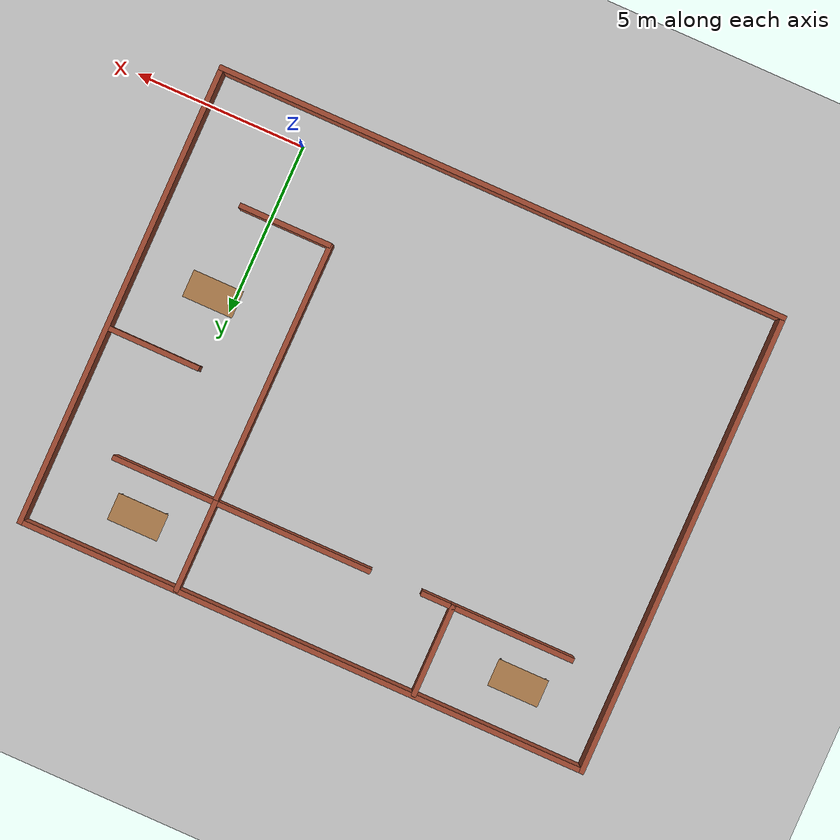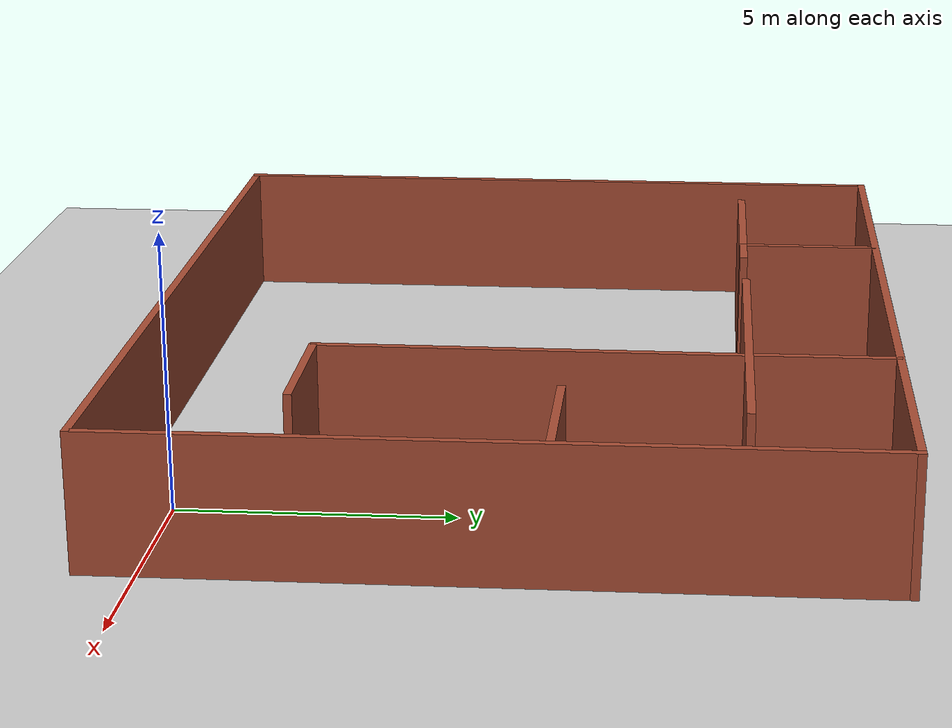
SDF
<sdf version="1.6">
 <world name="default">
  <light name="sun" type="directional">
   <pose>0 0 10 0 -0 0</pose>
   <diffuse>0.8 0.8 0.8 1</diffuse>
   <specular>0.2 0.2 0.2 1</specular>
   <attenuation>
    <range>1000</range>
    <constant>0.9</constant>
    <linear>0.01</linear>
    <quadratic>0.001</quadratic>
   </attenuation>
   <direction>-0.5 0.1 -0.9</direction>
  </light>
  <model name="ground_plane">
   <static>1</static>
   <link name="link">
    <collision name="collision">
     <geometry><plane><normal>0 0 1</normal><size>100 100</size></plane></geometry>
     <surface><friction><ode><mu>100</mu><mu2>50</mu2></ode></friction></surface>
    </collision>
    <visual name="visual">
     <cast_shadows>0</cast_shadows>
     <geometry><plane><normal>0 0 1</normal><size>100 100</size></plane></geometry>
     <material>
      <script><uri>file://media/materials/scripts/gazebo.material</uri><name>Gazebo/Grey</name></script>
     </material>
    </visual>
   </link>
  </model>
  <gravity>0 0 -9.8</gravity>
  <magnetic_field>6e-06 2.3e-05 -4.2e-05</magnetic_field>
  <atmosphere type="adiabatic"/>
  <physics name="default_physics" default="0" type="ode">
   <max_step_size>0.001</max_step_size>
   <real_time_factor>1</real_time_factor>
   <real_time_update_rate>1000</real_time_update_rate>
  </physics>
  <scene><ambient>0.4 0.4 0.4 1</ambient><background>0.7 0.7 0.7 1</background><shadows>1</shadows></scene>
  <audio><device>default</device></audio>
  <spherical_coordinates>
   <surface_model>EARTH_WGS84</surface_model>
   <latitude_deg>0</latitude_deg>
   <longitude_deg>0</longitude_deg>
   <elevation>0</elevation>
   <heading_deg>0</heading_deg>
  </spherical_coordinates>
  <model name="Warehouse">
   <link name="Wall_1">
    <pose>0.380508 -6.8 0 0 -0 0</pose>
    <visual name="Wall_1_Visual">
     <pose>0 0 1.25 0 -0 0</pose>
     <geometry><box><size>17 0.15 2.5</size></box></geometry>
     <material>
      <script><uri>file://media/materials/scripts/gazebo.material</uri><name>Gazebo/Bricks</name></script>
      <ambient>1 1 1 1</ambient>
     </material>
     <meta><layer>0</layer></meta>
    </visual>
    <collision name="Wall_1_Collision">
     <pose>0 0 1.25 0 -0 0</pose>
     <geometry><box><size>17 0.15 2.5</size></box></geometry>
     <surface>
      <friction>
       <ode><mu>1</mu><mu2>1</mu2><fdir1>0 0 0</fdir1><slip1>0</slip1><slip2>0</slip2></ode>
       <torsional>
        <coefficient>1</coefficient>
        <patch_radius>0</patch_radius>
        <surface_radius>0</surface_radius>
        <use_patch_radius>1</use_patch_radius>
        <ode><slip>0</slip></ode>
       </torsional>
      </friction>
      <bounce><restitution_coefficient>0</restitution_coefficient><threshold>1e+06</threshold></bounce>
      <contact>
       <collide_without_contact>0</collide_without_contact>
       <collide_without_contact_bitmask>1</collide_without_contact_bitmask>
       <collide_bitmask>1</collide_bitmask>
       <ode>
        <soft_cfm>0</soft_cfm>
        <soft_erp>0.2</soft_erp>
        <kp>1e+13</kp>
        <kd>1</kd>
        <max_vel>0.01</max_vel>
        <min_depth>0</min_depth>
       </ode>
       <bullet>
        <split_impulse>1</split_impulse>
        <split_impulse_penetration_threshold>-0.01</split_impulse_penetration_threshold>
        <soft_cfm>0</soft_cfm>
        <soft_erp>0.2</soft_erp>
        <kp>1e+13</kp>
        <kd>1</kd>
       </bullet>
      </contact>
     </surface>
    </collision>
   </link>
   <link name="Wall_2">
    <pose>8.80551 0 0 0 -0 1.5708</pose>
    <visual name="Wall_2_Visual">
     <pose>0 0 1.25 0 -0 0</pose>
     <geometry><box><size>13.75 0.15 2.5</size></box></geometry>
     <material>
      <script><uri>file://media/materials/scripts/gazebo.material</uri><name>Gazebo/Bricks</name></script>
      <ambient>1 1 1 1</ambient>
     </material>
     <meta><layer>0</layer></meta>
    </visual>
    <collision name="Wall_2_Collision">
     <pose>0 0 1.25 0 -0 0</pose>
     <geometry><box><size>13.75 0.15 2.5</size></box></geometry>
     <surface>
      <friction>
       <ode><mu>1</mu><mu2>1</mu2><fdir1>0 0 0</fdir1><slip1>0</slip1><slip2>0</slip2></ode>
       <torsional>
        <coefficient>1</coefficient>
        <patch_radius>0</patch_radius>
        <surface_radius>0</surface_radius>
        <use_patch_radius>1</use_patch_radius>
        <ode><slip>0</slip></ode>
       </torsional>
      </friction>
      <bounce><restitution_coefficient>0</restitution_coefficient><threshold>1e+06</threshold></bounce>
      <contact>
       <collide_without_contact>0</collide_without_contact>
       <collide_without_contact_bitmask>1</collide_without_contact_bitmask>
       <collide_bitmask>1</collide_bitmask>
       <ode>
        <soft_cfm>0</soft_cfm>
        <soft_erp>0.2</soft_erp>
        <kp>1e+13</kp>
        <kd>1</kd>
        <max_vel>0.01</max_vel>
        <min_depth>0</min_depth>
       </ode>
       <bullet>
        <split_impulse>1</split_impulse>
        <split_impulse_penetration_threshold>-0.01</split_impulse_penetration_threshold>
        <soft_cfm>0</soft_cfm>
        <soft_erp>0.2</soft_erp>
        <kp>1e+13</kp>
        <kd>1</kd>
       </bullet>
      </contact>
     </surface>
    </collision>
   </link>
   <link name="Wall_44">
    <pose>-2.98237 5.43363 0 0 -0 1.5708</pose>
    <inertial>
     <mass>1</mass>
     <inertia><ixx>1</ixx><ixy>0</ixy><ixz>0</ixz><iyy>1</iyy><iyz>0</iyz><izz>1</izz></inertia>
    </inertial>
    <visual name="Wall_44_Visual">
     <pose>0 0 1.25 0 -0 0</pose>
     <geometry><box><size>2.75 0.15 2.5</size></box></geometry>
     <material>
      <script><uri>file://media/materials/scripts/gazebo.material</uri><name>Gazebo/Bricks</name></script>
      <ambient>1 1 1 1</ambient>
      <shader type="vertex"><normal_map>__default__</normal_map></shader>
      <diffuse>1 1 1 1</diffuse>
      <specular>0.2 0.2 0.2 1</specular>
      <emissive>0 0 0 1</emissive>
     </material>
     <meta><layer>0</layer></meta>
    </visual>
    <collision name="Wall_44_Collision">
     <pose>0 0 1.25 0 -0 0</pose>
     <geometry><box><size>2.75 0.15 2.5</size></box></geometry>
     <surface>
      <friction>
       <ode><mu>1</mu><mu2>1</mu2><fdir1>0 0 0</fdir1><slip1>0</slip1><slip2>0</slip2></ode>
       <torsional>
        <coefficient>1</coefficient>
        <patch_radius>0</patch_radius>
        <surface_radius>0</surface_radius>
        <use_patch_radius>1</use_patch_radius>
        <ode><slip>0</slip></ode>
       </torsional>
      </friction>
      <bounce><restitution_coefficient>0</restitution_coefficient><threshold>1e+06</threshold></bounce>
      <contact>
       <collide_without_contact>0</collide_without_contact>
       <collide_without_contact_bitmask>1</collide_without_contact_bitmask>
       <collide_bitmask>1</collide_bitmask>
       <ode>
        <soft_cfm>0</soft_cfm>
        <soft_erp>0.2</soft_erp>
        <kp>1e+13</kp>
        <kd>1</kd>
        <max_vel>0.01</max_vel>
        <min_depth>0</min_depth>
       </ode>
       <bullet>
        <split_impulse>1</split_impulse>
        <split_impulse_penetration_threshold>-0.01</split_impulse_penetration_threshold>
        <soft_cfm>0</soft_cfm>
        <soft_erp>0.2</soft_erp>
        <kp>1e+13</kp>
        <kd>1</kd>
       </bullet>
      </contact>
     </surface>
    </collision>
   </link>
   <link name="Wall_44_clone">
    <pose>7.4021 0.977881 0 0 0 -0.003757</pose>
    <inertial>
     <mass>1</mass>
     <inertia><ixx>1</ixx><ixy>0</ixy><ixz>0</ixz><iyy>1</iyy><iyz>0</iyz><izz>1</izz></inertia>
    </inertial>
    <visual name="Wall_44_Visual">
     <pose>0 0 1.25 0 -0 0</pose>
     <geometry><box><size>2.75 0.15 2.5</size></box></geometry>
     <material>
      <script><uri>file://media/materials/scripts/gazebo.material</uri><name>Gazebo/Bricks</name></script>
      <ambient>1 1 1 1</ambient>
      <shader type="vertex"><normal_map>__default__</normal_map></shader>
      <diffuse>1 1 1 1</diffuse>
      <specular>0.2 0.2 0.2 1</specular>
      <emissive>0 0 0 1</emissive>
     </material>
     <meta><layer>0</layer></meta>
    </visual>
    <collision name="Wall_44_Collision">
     <pose>0 0 1.25 0 -0 0</pose>
     <geometry><box><size>2.75 0.15 2.5</size></box></geometry>
     <surface>
      <friction>
       <ode><mu>1</mu><mu2>1</mu2><fdir1>0 0 0</fdir1><slip1>0</slip1><slip2>0</slip2></ode>
       <torsional>
        <coefficient>1</coefficient>
        <patch_radius>0</patch_radius>
        <surface_radius>0</surface_radius>
        <use_patch_radius>1</use_patch_radius>
        <ode><slip>0</slip></ode>
       </torsional>
      </friction>
      <bounce><restitution_coefficient>0</restitution_coefficient><threshold>1e+06</threshold></bounce>
      <contact>
       <collide_without_contact>0</collide_without_contact>
       <collide_without_contact_bitmask>1</collide_without_contact_bitmask>
       <collide_bitmask>1</collide_bitmask>
       <ode>
        <soft_cfm>0</soft_cfm>
        <soft_erp>0.2</soft_erp>
        <kp>1e+13</kp>
        <kd>1</kd>
        <max_vel>0.01</max_vel>
        <min_depth>0</min_depth>
       </ode>
       <bullet>
        <split_impulse>1</split_impulse>
        <split_impulse_penetration_threshold>-0.01</split_impulse_penetration_threshold>
        <soft_cfm>0</soft_cfm>
        <soft_erp>0.2</soft_erp>
        <kp>1e+13</kp>
        <kd>1</kd>
       </bullet>
      </contact>
     </surface>
    </collision>
   </link>
   <link name="Wall_44_clone_0">
    <pose>5.46023 -3.56141 0 0 0 -0.000517</pose>
    <inertial>
     <mass>1</mass>
     <inertia><ixx>1</ixx><ixy>0</ixy><ixz>0</ixz><iyy>1</iyy><iyz>0</iyz><izz>1</izz></inertia>
    </inertial>
    <visual name="Wall_44_Visual">
     <pose>0 0 1.25 0 -0 0</pose>
     <geometry><box><size>2.75 0.15 2.5</size></box></geometry>
     <material>
      <script><uri>file://media/materials/scripts/gazebo.material</uri><name>Gazebo/Bricks</name></script>
      <ambient>1 1 1 1</ambient>
      <shader type="vertex"><normal_map>__default__</normal_map></shader>
      <diffuse>1 1 1 1</diffuse>
      <specular>0.2 0.2 0.2 1</specular>
      <emissive>0 0 0 1</emissive>
     </material>
     <meta><layer>0</layer></meta>
    </visual>
    <collision name="Wall_44_Collision">
     <pose>0 0 1.25 0 -0 0</pose>
     <geometry><box><size>2.75 0.15 2.5</size></box></geometry>
     <surface>
      <friction>
       <ode><mu>1</mu><mu2>1</mu2><fdir1>0 0 0</fdir1><slip1>0</slip1><slip2>0</slip2></ode>
       <torsional>
        <coefficient>1</coefficient>
        <patch_radius>0</patch_radius>
        <surface_radius>0</surface_radius>
        <use_patch_radius>1</use_patch_radius>
        <ode><slip>0</slip></ode>
       </torsional>
      </friction>
      <bounce><restitution_coefficient>0</restitution_coefficient><threshold>1e+06</threshold></bounce>
      <contact>
       <collide_without_contact>0</collide_without_contact>
       <collide_without_contact_bitmask>1</collide_without_contact_bitmask>
       <collide_bitmask>1</collide_bitmask>
       <ode>
        <soft_cfm>0</soft_cfm>
        <soft_erp>0.2</soft_erp>
        <kp>1e+13</kp>
        <kd>1</kd>
        <max_vel>0.01</max_vel>
        <min_depth>0</min_depth>
       </ode>
       <bullet>
        <split_impulse>1</split_impulse>
        <split_impulse_penetration_threshold>-0.01</split_impulse_penetration_threshold>
        <soft_cfm>0</soft_cfm>
        <soft_erp>0.2</soft_erp>
        <kp>1e+13</kp>
        <kd>1</kd>
       </bullet>
      </contact>
     </surface>
    </collision>
   </link>
   <link name="Wall_46">
    <pose>-2.53423 4.13363 0 0 -0 0</pose>
    <inertial>
     <mass>1</mass>
     <inertia><ixx>1</ixx><ixy>0</ixy><ixz>0</ixz><iyy>1</iyy><iyz>0</iyz><izz>1</izz></inertia>
    </inertial>
    <visual name="Wall_46_Visual">
     <pose>0 0 1.25 0 -0 0</pose>
     <geometry><box><size>1 0.15 2.5</size></box></geometry>
     <material>
      <script><uri>file://media/materials/scripts/gazebo.material</uri><name>Gazebo/Bricks</name></script>
      <ambient>1 1 1 1</ambient>
      <shader type="vertex"><normal_map>__default__</normal_map></shader>
      <diffuse>1 1 1 1</diffuse>
      <specular>0.2 0.2 0.2 1</specular>
      <emissive>0 0 0 1</emissive>
     </material>
     <meta><layer>0</layer></meta>
    </visual>
    <collision name="Wall_46_Collision">
     <pose>0 0 1.25 0 -0 0</pose>
     <geometry><box><size>1 0.15 2.5</size></box></geometry>
     <surface>
      <friction>
       <ode><mu>1</mu><mu2>1</mu2><fdir1>0 0 0</fdir1><slip1>0</slip1><slip2>0</slip2></ode>
       <torsional>
        <coefficient>1</coefficient>
        <patch_radius>0</patch_radius>
        <surface_radius>0</surface_radius>
        <use_patch_radius>1</use_patch_radius>
        <ode><slip>0</slip></ode>
       </torsional>
      </friction>
      <bounce><restitution_coefficient>0</restitution_coefficient><threshold>1e+06</threshold></bounce>
      <contact>
       <collide_without_contact>0</collide_without_contact>
       <collide_without_contact_bitmask>1</collide_without_contact_bitmask>
       <collide_bitmask>1</collide_bitmask>
       <ode>
        <soft_cfm>0</soft_cfm>
        <soft_erp>0.2</soft_erp>
        <kp>1e+13</kp>
        <kd>1</kd>
        <max_vel>0.01</max_vel>
        <min_depth>0</min_depth>
       </ode>
       <bullet>
        <split_impulse>1</split_impulse>
        <split_impulse_penetration_threshold>-0.01</split_impulse_penetration_threshold>
        <soft_cfm>0</soft_cfm>
        <soft_erp>0.2</soft_erp>
        <kp>1e+13</kp>
        <kd>1</kd>
       </bullet>
      </contact>
     </surface>
    </collision>
   </link>
   <link name="Wall_49">
    <pose>4.13581 5.46248 0 0 -0 1.5708</pose>
    <inertial>
     <mass>1</mass>
     <inertia><ixx>1</ixx><ixy>0</ixy><ixz>0</ixz><iyy>1</iyy><iyz>0</iyz><izz>1</izz></inertia>
    </inertial>
    <visual name="Wall_49_Visual">
     <pose>0 0 1.25 0 -0 0</pose>
     <geometry><box><size>2.75 0.15 2.5</size></box></geometry>
     <material>
      <script><uri>file://media/materials/scripts/gazebo.material</uri><name>Gazebo/Bricks</name></script>
      <ambient>1 1 1 1</ambient>
      <shader type="vertex"><normal_map>__default__</normal_map></shader>
      <diffuse>1 1 1 1</diffuse>
      <specular>0.2 0.2 0.2 1</specular>
      <emissive>0 0 0 1</emissive>
     </material>
     <meta><layer>0</layer></meta>
    </visual>
    <collision name="Wall_49_Collision">
     <pose>0 0 1.25 0 -0 0</pose>
     <geometry><box><size>2.75 0.15 2.5</size></box></geometry>
     <surface>
      <friction>
       <ode><mu>1</mu><mu2>1</mu2><fdir1>0 0 0</fdir1><slip1>0</slip1><slip2>0</slip2></ode>
       <torsional>
        <coefficient>1</coefficient>
        <patch_radius>0</patch_radius>
        <surface_radius>0</surface_radius>
        <use_patch_radius>1</use_patch_radius>
        <ode><slip>0</slip></ode>
       </torsional>
      </friction>
      <bounce><restitution_coefficient>0</restitution_coefficient><threshold>1e+06</threshold></bounce>
      <contact>
       <collide_without_contact>0</collide_without_contact>
       <collide_without_contact_bitmask>1</collide_without_contact_bitmask>
       <collide_bitmask>1</collide_bitmask>
       <ode>
        <soft_cfm>0</soft_cfm>
        <soft_erp>0.2</soft_erp>
        <kp>1e+13</kp>
        <kd>1</kd>
        <max_vel>0.01</max_vel>
        <min_depth>0</min_depth>
       </ode>
       <bullet>
        <split_impulse>1</split_impulse>
        <split_impulse_penetration_threshold>-0.01</split_impulse_penetration_threshold>
        <soft_cfm>0</soft_cfm>
        <soft_erp>0.2</soft_erp>
        <kp>1e+13</kp>
        <kd>1</kd>
       </bullet>
      </contact>
     </surface>
    </collision>
   </link>
   <link name="Wall_51">
    <pose>-8.04449 0 0 0 -0 1.5708</pose>
    <inertial>
     <mass>1</mass>
     <inertia><ixx>1</ixx><ixy>0</ixy><ixz>0</ixz><iyy>1</iyy><iyz>0</iyz><izz>1</izz></inertia>
    </inertial>
    <visual name="Wall_51_Visual">
     <pose>0 0 1.25 0 -0 0</pose>
     <geometry><box><size>13.75 0.15 2.5</size></box></geometry>
     <material>
      <script><uri>file://media/materials/scripts/gazebo.material</uri><name>Gazebo/Bricks</name></script>
      <ambient>1 1 1 1</ambient>
      <shader type="vertex"><normal_map>__default__</normal_map></shader>
      <diffuse>0.7 0.7 0.7 1</diffuse>
      <specular>0.01 0.01 0.01 1</specular>
      <emissive>0 0 0 1</emissive>
     </material>
     <meta><layer>0</layer></meta>
    </visual>
    <collision name="Wall_51_Collision">
     <pose>0 0 1.25 0 -0 0</pose>
     <geometry><box><size>13.75 0.15 2.5</size></box></geometry>
     <surface>
      <friction>
       <ode><mu>1</mu><mu2>1</mu2><fdir1>0 0 0</fdir1><slip1>0</slip1><slip2>0</slip2></ode>
       <torsional>
        <coefficient>1</coefficient>
        <patch_radius>0</patch_radius>
        <surface_radius>0</surface_radius>
        <use_patch_radius>1</use_patch_radius>
        <ode><slip>0</slip></ode>
       </torsional>
      </friction>
      <bounce><restitution_coefficient>0</restitution_coefficient><threshold>1e+06</threshold></bounce>
      <contact>
       <collide_without_contact>0</collide_without_contact>
       <collide_without_contact_bitmask>1</collide_without_contact_bitmask>
       <collide_bitmask>1</collide_bitmask>
       <ode>
        <soft_cfm>0</soft_cfm>
        <soft_erp>0.2</soft_erp>
        <kp>1e+13</kp>
        <kd>1</kd>
        <max_vel>0.01</max_vel>
        <min_depth>0</min_depth>
       </ode>
       <bullet>
        <split_impulse>1</split_impulse>
        <split_impulse_penetration_threshold>-0.01</split_impulse_penetration_threshold>
        <soft_cfm>0</soft_cfm>
        <soft_erp>0.2</soft_erp>
        <kp>1e+13</kp>
        <kd>1</kd>
       </bullet>
      </contact>
     </surface>
    </collision>
   </link>
   <link name="Wall_56">
    <pose>0.380508 6.8 0 0 -0 0</pose>
    <inertial>
     <mass>1</mass>
     <inertia><ixx>1</ixx><ixy>0</ixy><ixz>0</ixz><iyy>1</iyy><iyz>0</iyz><izz>1</izz></inertia>
    </inertial>
    <visual name="Wall_56_Visual">
     <pose>0 0 1.25 0 -0 0</pose>
     <geometry><box><size>17 0.15 2.5</size></box></geometry>
     <material>
      <script><uri>file://media/materials/scripts/gazebo.material</uri><name>Gazebo/Bricks</name></script>
      <ambient>1 1 1 1</ambient>
      <shader type="vertex"><normal_map>__default__</normal_map></shader>
      <diffuse>1 1 1 1</diffuse>
      <specular>0.2 0.2 0.2 1</specular>
      <emissive>0 0 0 1</emissive>
     </material>
     <meta><layer>0</layer></meta>
    </visual>
    <collision name="Wall_56_Collision">
     <pose>0 0 1.25 0 -0 0</pose>
     <geometry><box><size>17 0.15 2.5</size></box></geometry>
     <surface>
      <friction>
       <ode><mu>1</mu><mu2>1</mu2><fdir1>0 0 0</fdir1><slip1>0</slip1><slip2>0</slip2></ode>
       <torsional>
        <coefficient>1</coefficient>
        <patch_radius>0</patch_radius>
        <surface_radius>0</surface_radius>
        <use_patch_radius>1</use_patch_radius>
        <ode><slip>0</slip></ode>
       </torsional>
      </friction>
      <bounce><restitution_coefficient>0</restitution_coefficient><threshold>1e+06</threshold></bounce>
      <contact>
       <collide_without_contact>0</collide_without_contact>
       <collide_without_contact_bitmask>1</collide_without_contact_bitmask>
       <collide_bitmask>1</collide_bitmask>
       <ode>
        <soft_cfm>0</soft_cfm>
        <soft_erp>0.2</soft_erp>
        <kp>1e+13</kp>
        <kd>1</kd>
        <max_vel>0.01</max_vel>
        <min_depth>0</min_depth>
       </ode>
       <bullet>
        <split_impulse>1</split_impulse>
        <split_impulse_penetration_threshold>-0.01</split_impulse_penetration_threshold>
        <soft_cfm>0</soft_cfm>
        <soft_erp>0.2</soft_erp>
        <kp>1e+13</kp>
        <kd>1</kd>
       </bullet>
      </contact>
     </surface>
    </collision>
   </link>
   <link name="Wall_58">
    <pose>-4.75923 4.13363 0 0 -0 3.14159</pose>
    <inertial>
     <mass>1</mass>
     <inertia><ixx>1</ixx><ixy>0</ixy><ixz>0</ixz><iyy>1</iyy><iyz>0</iyz><izz>1</izz></inertia>
    </inertial>
    <visual name="Wall_58_Visual">
     <pose>0 0 1.25 0 -0 0</pose>
     <geometry><box><size>3.70374 0.15 2.5</size></box></geometry>
     <material>
      <script><uri>file://media/materials/scripts/gazebo.material</uri><name>Gazebo/Bricks</name></script>
      <ambient>1 1 1 1</ambient>
      <shader type="vertex"><normal_map>__default__</normal_map></shader>
      <diffuse>1 1 1 1</diffuse>
      <specular>0.2 0.2 0.2 1</specular>
      <emissive>0 0 0 1</emissive>
     </material>
     <meta><layer>0</layer></meta>
    </visual>
    <collision name="Wall_58_Collision">
     <pose>0 0 1.25 0 -0 0</pose>
     <geometry><box><size>3.70374 0.15 2.5</size></box></geometry>
     <surface>
      <friction>
       <ode><mu>1</mu><mu2>1</mu2><fdir1>0 0 0</fdir1><slip1>0</slip1><slip2>0</slip2></ode>
       <torsional>
        <coefficient>1</coefficient>
        <patch_radius>0</patch_radius>
        <surface_radius>0</surface_radius>
        <use_patch_radius>1</use_patch_radius>
        <ode><slip>0</slip></ode>
       </torsional>
      </friction>
      <bounce><restitution_coefficient>0</restitution_coefficient><threshold>1e+06</threshold></bounce>
      <contact>
       <collide_without_contact>0</collide_without_contact>
       <collide_without_contact_bitmask>1</collide_without_contact_bitmask>
       <collide_bitmask>1</collide_bitmask>
       <ode>
        <soft_cfm>0</soft_cfm>
        <soft_erp>0.2</soft_erp>
        <kp>1e+13</kp>
        <kd>1</kd>
        <max_vel>0.01</max_vel>
        <min_depth>0</min_depth>
       </ode>
       <bullet>
        <split_impulse>1</split_impulse>
        <split_impulse_penetration_threshold>-0.01</split_impulse_penetration_threshold>
        <soft_cfm>0</soft_cfm>
        <soft_erp>0.2</soft_erp>
        <kp>1e+13</kp>
        <kd>1</kd>
       </bullet>
      </contact>
     </surface>
    </collision>
   </link>
   <link name="Wall_61">
    <pose>3.33581 4.16247 0 0 -0 0</pose>
    <inertial>
     <mass>1</mass>
     <inertia><ixx>1</ixx><ixy>0</ixy><ixz>0</ixz><iyy>1</iyy><iyz>0</iyz><izz>1</izz></inertia>
    </inertial>
    <visual name="Wall_61_Visual">
     <pose>0 0 1.25 0 -0 0</pose>
     <geometry><box><size>7.75 0.15 2.5</size></box></geometry>
     <material>
      <script><uri>file://media/materials/scripts/gazebo.material</uri><name>Gazebo/Bricks</name></script>
      <ambient>1 1 1 1</ambient>
      <shader type="vertex"><normal_map>__default__</normal_map></shader>
      <diffuse>1 1 1 1</diffuse>
      <specular>0.2 0.2 0.2 1</specular>
      <emissive>0 0 0 1</emissive>
     </material>
     <meta><layer>0</layer></meta>
    </visual>
    <collision name="Wall_61_Collision">
     <pose>0 0 1.25 0 -0 0</pose>
     <geometry><box><size>7.75 0.15 2.5</size></box></geometry>
     <surface>
      <friction>
       <ode><mu>1</mu><mu2>1</mu2><fdir1>0 0 0</fdir1><slip1>0</slip1><slip2>0</slip2></ode>
       <torsional>
        <coefficient>1</coefficient>
        <patch_radius>0</patch_radius>
        <surface_radius>0</surface_radius>
        <use_patch_radius>1</use_patch_radius>
        <ode><slip>0</slip></ode>
       </torsional>
      </friction>
      <bounce><restitution_coefficient>0</restitution_coefficient><threshold>1e+06</threshold></bounce>
      <contact>
       <collide_without_contact>0</collide_without_contact>
       <collide_without_contact_bitmask>1</collide_without_contact_bitmask>
       <collide_bitmask>1</collide_bitmask>
       <ode>
        <soft_cfm>0</soft_cfm>
        <soft_erp>0.2</soft_erp>
        <kp>1e+13</kp>
        <kd>1</kd>
        <max_vel>0.01</max_vel>
        <min_depth>0</min_depth>
       </ode>
       <bullet>
        <split_impulse>1</split_impulse>
        <split_impulse_penetration_threshold>-0.01</split_impulse_penetration_threshold>
        <soft_cfm>0</soft_cfm>
        <soft_erp>0.2</soft_erp>
        <kp>1e+13</kp>
        <kd>1</kd>
       </bullet>
      </contact>
     </surface>
    </collision>
   </link>
   <link name="Wall_61_clone">
    <pose>4.1321 0.259311 0 0 0 -1.57603</pose>
    <inertial>
     <mass>1</mass>
     <inertia><ixx>1</ixx><ixy>0</ixy><ixz>0</ixz><iyy>1</iyy><iyz>0</iyz><izz>1</izz></inertia>
    </inertial>
    <visual name="Wall_61_Visual">
     <pose>0 0 1.25 0 -0 0</pose>
     <geometry><box><size>7.75 0.15 2.5</size></box></geometry>
     <material>
      <script><uri>file://media/materials/scripts/gazebo.material</uri><name>Gazebo/Bricks</name></script>
      <ambient>1 1 1 1</ambient>
      <shader type="vertex"><normal_map>__default__</normal_map></shader>
      <diffuse>1 1 1 1</diffuse>
      <specular>0.2 0.2 0.2 1</specular>
      <emissive>0 0 0 1</emissive>
     </material>
     <meta><layer>0</layer></meta>
    </visual>
    <collision name="Wall_61_Collision">
     <pose>0 0 1.25 0 -0 0</pose>
     <geometry><box><size>7.75 0.15 2.5</size></box></geometry>
     <surface>
      <friction>
       <ode><mu>1</mu><mu2>1</mu2><fdir1>0 0 0</fdir1><slip1>0</slip1><slip2>0</slip2></ode>
       <torsional>
        <coefficient>1</coefficient>
        <patch_radius>0</patch_radius>
        <surface_radius>0</surface_radius>
        <use_patch_radius>1</use_patch_radius>
        <ode><slip>0</slip></ode>
       </torsional>
      </friction>
      <bounce><restitution_coefficient>0</restitution_coefficient><threshold>1e+06</threshold></bounce>
      <contact>
       <collide_without_contact>0</collide_without_contact>
       <collide_without_contact_bitmask>1</collide_without_contact_bitmask>
       <collide_bitmask>1</collide_bitmask>
       <ode>
        <soft_cfm>0</soft_cfm>
        <soft_erp>0.2</soft_erp>
        <kp>1e+13</kp>
        <kd>1</kd>
        <max_vel>0.01</max_vel>
        <min_depth>0</min_depth>
       </ode>
       <bullet>
        <split_impulse>1</split_impulse>
        <split_impulse_penetration_threshold>-0.01</split_impulse_penetration_threshold>
        <soft_cfm>0</soft_cfm>
        <soft_erp>0.2</soft_erp>
        <kp>1e+13</kp>
        <kd>1</kd>
       </bullet>
      </contact>
     </surface>
    </collision>
   </link>
   <static>1</static>
   <pose>-5.96884 5.79476 0 0 -0 0</pose>
  </model>
  <model name="table">
   <static>1</static>
   <link name="link">
    <collision name="surface">
     <pose>0 0 1 0 -0 0</pose>
     <geometry><box><size>1.5 0.8 0.03</size></box></geometry>
     <surface><friction><ode><mu>0.6</mu><mu2>0.6</mu2></ode></friction></surface>
    </collision>
    <visual name="visual1">
     <pose>0 0 1 0 -0 0</pose>
     <geometry><box><size>1.5 0.8 0.03</size></box></geometry>
     <material>
      <script><uri>file://media/materials/scripts/gazebo.material</uri><name>Gazebo/Wood</name></script>
     </material>
    </visual>
    <collision name="front_left_leg">
     <pose>0.68 0.38 0.5 0 -0 0</pose>
     <geometry><cylinder><radius>0.02</radius><length>1</length></cylinder></geometry>
    </collision>
    <visual name="front_left_leg">
     <pose>0.68 0.38 0.5 0 -0 0</pose>
     <geometry><cylinder><radius>0.02</radius><length>1</length></cylinder></geometry>
     <material>
      <script><uri>file://media/materials/scripts/gazebo.material</uri><name>Gazebo/Grey</name></script>
     </material>
    </visual>
    <collision name="front_right_leg">
     <pose>0.68 -0.38 0.5 0 -0 0</pose>
     <geometry><cylinder><radius>0.02</radius><length>1</length></cylinder></geometry>
    </collision>
    <visual name="front_right_leg">
     <pose>0.68 -0.38 0.5 0 -0 0</pose>
     <geometry><cylinder><radius>0.02</radius><length>1</length></cylinder></geometry>
     <material>
      <script><uri>file://media/materials/scripts/gazebo.material</uri><name>Gazebo/Grey</name></script>
     </material>
    </visual>
    <collision name="back_right_leg">
     <pose>-0.68 -0.38 0.5 0 -0 0</pose>
     <geometry><cylinder><radius>0.02</radius><length>1</length></cylinder></geometry>
    </collision>
    <visual name="back_right_leg">
     <pose>-0.68 -0.38 0.5 0 -0 0</pose>
     <geometry><cylinder><radius>0.02</radius><length>1</length></cylinder></geometry>
     <material>
      <script><uri>file://media/materials/scripts/gazebo.material</uri><name>Gazebo/Grey</name></script>
     </material>
    </visual>
    <collision name="back_left_leg">
     <pose>-0.68 0.38 0.5 0 -0 0</pose>
     <geometry><cylinder><radius>0.02</radius><length>1</length></cylinder></geometry>
    </collision>
    <visual name="back_left_leg">
     <pose>-0.68 0.38 0.5 0 -0 0</pose>
     <geometry><cylinder><radius>0.02</radius><length>1</length></cylinder></geometry>
     <material>
      <script><uri>file://media/materials/scripts/gazebo.material</uri><name>Gazebo/Grey</name></script>
     </material>
    </visual>
   </link>
   <pose>-0.016524 11.2183 0 0 -0 0</pose>
  </model>
  <model name="table_0">
   <static>1</static>
   <link name="link">
    <collision name="surface">
     <pose>0 0 1 0 -0 0</pose>
     <geometry><box><size>1.5 0.8 0.03</size></box></geometry>
     <surface><friction><ode><mu>0.6</mu><mu2>0.6</mu2></ode></friction></surface>
    </collision>
    <visual name="visual1">
     <pose>0 0 1 0 -0 0</pose>
     <geometry><box><size>1.5 0.8 0.03</size></box></geometry>
     <material>
      <script><uri>file://media/materials/scripts/gazebo.material</uri><name>Gazebo/Wood</name></script>
     </material>
    </visual>
    <collision name="front_left_leg">
     <pose>0.68 0.38 0.5 0 -0 0</pose>
     <geometry><cylinder><radius>0.02</radius><length>1</length></cylinder></geometry>
    </collision>
    <visual name="front_left_leg">
     <pose>0.68 0.38 0.5 0 -0 0</pose>
     <geometry><cylinder><radius>0.02</radius><length>1</length></cylinder></geometry>
     <material>
      <script><uri>file://media/materials/scripts/gazebo.material</uri><name>Gazebo/Grey</name></script>
     </material>
    </visual>
    <collision name="front_right_leg">
     <pose>0.68 -0.38 0.5 0 -0 0</pose>
     <geometry><cylinder><radius>0.02</radius><length>1</length></cylinder></geometry>
    </collision>
    <visual name="front_right_leg">
     <pose>0.68 -0.38 0.5 0 -0 0</pose>
     <geometry><cylinder><radius>0.02</radius><length>1</length></cylinder></geometry>
     <material>
      <script><uri>file://media/materials/scripts/gazebo.material</uri><name>Gazebo/Grey</name></script>
     </material>
    </visual>
    <collision name="back_right_leg">
     <pose>-0.68 -0.38 0.5 0 -0 0</pose>
     <geometry><cylinder><radius>0.02</radius><length>1</length></cylinder></geometry>
    </collision>
    <visual name="back_right_leg">
     <pose>-0.68 -0.38 0.5 0 -0 0</pose>
     <geometry><cylinder><radius>0.02</radius><length>1</length></cylinder></geometry>
     <material>
      <script><uri>file://media/materials/scripts/gazebo.material</uri><name>Gazebo/Grey</name></script>
     </material>
    </visual>
    <collision name="back_left_leg">
     <pose>-0.68 0.38 0.5 0 -0 0</pose>
     <geometry><cylinder><radius>0.02</radius><length>1</length></cylinder></geometry>
    </collision>
    <visual name="back_left_leg">
     <pose>-0.68 0.38 0.5 0 -0 0</pose>
     <geometry><cylinder><radius>0.02</radius><length>1</length></cylinder></geometry>
     <material>
      <script><uri>file://media/materials/scripts/gazebo.material</uri><name>Gazebo/Grey</name></script>
     </material>
    </visual>
   </link>
   <pose>0.589944 4.74455 0 0 -0 0</pose>
  </model>
  <model name="table_1">
   <static>1</static>
   <link name="link">
    <collision name="surface">
     <pose>0 0 1 0 -0 0</pose>
     <geometry><box><size>1.5 0.8 0.03</size></box></geometry>
     <surface><friction><ode><mu>0.6</mu><mu2>0.6</mu2></ode></friction></surface>
    </collision>
    <visual name="visual1">
     <pose>0 0 1 0 -0 0</pose>
     <geometry><box><size>1.5 0.8 0.03</size></box></geometry>
     <material>
      <script><uri>file://media/materials/scripts/gazebo.material</uri><name>Gazebo/Wood</name></script>
     </material>
    </visual>
    <collision name="front_left_leg">
     <pose>0.68 0.38 0.5 0 -0 0</pose>
     <geometry><cylinder><radius>0.02</radius><length>1</length></cylinder></geometry>
    </collision>
    <visual name="front_left_leg">
     <pose>0.68 0.38 0.5 0 -0 0</pose>
     <geometry><cylinder><radius>0.02</radius><length>1</length></cylinder></geometry>
     <material>
      <script><uri>file://media/materials/scripts/gazebo.material</uri><name>Gazebo/Grey</name></script>
     </material>
    </visual>
    <collision name="front_right_leg">
     <pose>0.68 -0.38 0.5 0 -0 0</pose>
     <geometry><cylinder><radius>0.02</radius><length>1</length></cylinder></geometry>
    </collision>
    <visual name="front_right_leg">
     <pose>0.68 -0.38 0.5 0 -0 0</pose>
     <geometry><cylinder><radius>0.02</radius><length>1</length></cylinder></geometry>
     <material>
      <script><uri>file://media/materials/scripts/gazebo.material</uri><name>Gazebo/Grey</name></script>
     </material>
    </visual>
    <collision name="back_right_leg">
     <pose>-0.68 -0.38 0.5 0 -0 0</pose>
     <geometry><cylinder><radius>0.02</radius><length>1</length></cylinder></geometry>
    </collision>
    <visual name="back_right_leg">
     <pose>-0.68 -0.38 0.5 0 -0 0</pose>
     <geometry><cylinder><radius>0.02</radius><length>1</length></cylinder></geometry>
     <material>
      <script><uri>file://media/materials/scripts/gazebo.material</uri><name>Gazebo/Grey</name></script>
     </material>
    </visual>
    <collision name="back_left_leg">
     <pose>-0.68 0.38 0.5 0 -0 0</pose>
     <geometry><cylinder><radius>0.02</radius><length>1</length></cylinder></geometry>
    </collision>
    <visual name="back_left_leg">
     <pose>-0.68 0.38 0.5 0 -0 0</pose>
     <geometry><cylinder><radius>0.02</radius><length>1</length></cylinder></geometry>
     <material>
      <script><uri>file://media/materials/scripts/gazebo.material</uri><name>Gazebo/Grey</name></script>
     </material>
    </visual>
   </link>
   <pose>-11.4791 11.1413 0 0 -0 0</pose>
  </model>
 </world>
</sdf>
